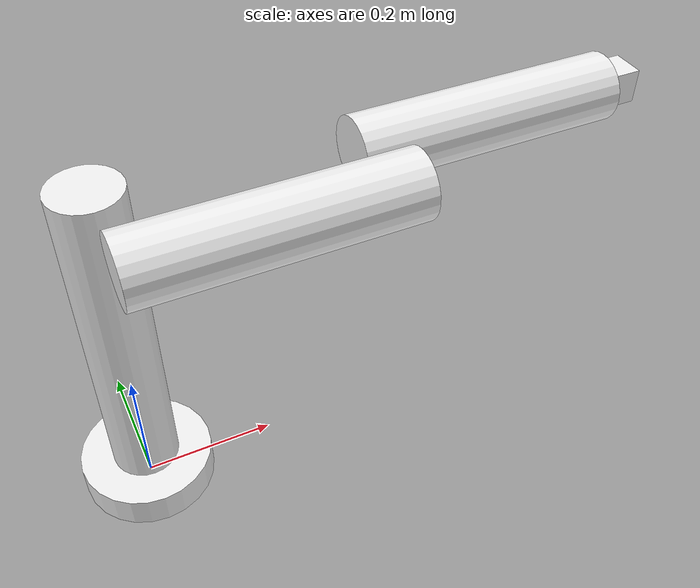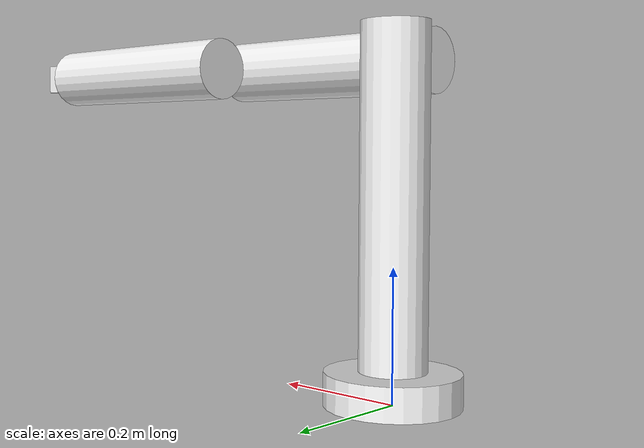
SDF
<sdf version='1.11'>
  <model name='pinchy'>
    <joint name='world_to_base_link' type='fixed'>
      <pose relative_to='__model__'>0 0 0 0 0 0</pose>
      <parent>world</parent>
      <child>base_link</child>
    </joint>
    <link name='base_link'>
      <pose relative_to='world_to_base_link'>0 0 0 0 0 0</pose>
      <inertial>
        <pose>0 0 0.025000000000000001 0 0 0</pose>
        <mass>1</mass>
        <inertia>
          <ixx>0.0027000000000000001</ixx>
          <ixy>0</ixy>
          <ixz>0</ixz>
          <iyy>0.0027000000000000001</iyy>
          <iyz>0</iyz>
          <izz>0.0050000000000000001</izz>
        </inertia>
      </inertial>
      <collision name='base_link_collision'>
        <pose>0 0 0.025000000000000001 0 0 0</pose>
        <geometry>
          <cylinder>
            <length>0.050000000000000003</length>
            <radius>0.10000000000000001</radius>
          </cylinder>
        </geometry>
      </collision>
      <visual name='base_link_visual'>
        <pose>0 0 0.025000000000000001 0 0 0</pose>
        <geometry>
          <cylinder>
            <length>0.050000000000000003</length>
            <radius>0.10000000000000001</radius>
          </cylinder>
        </geometry>
        <material>
          <diffuse>0.9375 0.9375 0.9375 1</diffuse>
          <ambient>0.9375 0.9375 0.9375 1</ambient>
        </material>
      </visual>
    </link>
    <joint name='base_link_to_torso' type='revolute'>
      <pose relative_to='base_link'>0 0 0.050000000000000003 0 0 0</pose>
      <parent>base_link</parent>
      <child>torso</child>
      <axis>
        <xyz>0 0 1</xyz>
        <limit>
          <lower>-inf</lower>
          <upper>inf</upper>
        </limit>
        <dynamics>
          <spring_reference>0</spring_reference>
          <spring_stiffness>0</spring_stiffness>
        </dynamics>
      </axis>
    </joint>
    <link name='torso'>
      <pose relative_to='base_link_to_torso'>0 0 0 0 0 0</pose>
      <inertial>
        <pose>0 0 0.25 0 0 0</pose>
        <mass>1</mass>
        <inertia>
          <ixx>0.0021459999999999999</ixx>
          <ixy>0</ixy>
          <ixz>0</ixz>
          <iyy>0.0021459999999999999</iyy>
          <iyz>0</iyz>
          <izz>0.00125</izz>
        </inertia>
      </inertial>
      <collision name='torso_collision'>
        <pose>0 0 0.25 0 0 0</pose>
        <geometry>
          <cylinder>
            <length>0.5</length>
            <radius>0.050000000000000003</radius>
          </cylinder>
        </geometry>
      </collision>
      <visual name='torso_visual'>
        <pose>0 0 0.25 0 0 0</pose>
        <geometry>
          <cylinder>
            <length>0.5</length>
            <radius>0.050000000000000003</radius>
          </cylinder>
        </geometry>
        <material>
          <diffuse>0.9375 0.9375 0.9375 1</diffuse>
          <ambient>0.9375 0.9375 0.9375 1</ambient>
        </material>
      </visual>
    </link>
    <joint name='torso_to_upper_arm' type='revolute'>
      <pose relative_to='torso'>0 -0.10000000000000001 0.45000000000000001 3.1415926535897931 1.5707926536359933 3.1415926535897931</pose>
      <parent>torso</parent>
      <child>upper_arm</child>
      <axis>
        <xyz>0 1 0</xyz>
        <limit>
          <lower>-inf</lower>
          <upper>inf</upper>
        </limit>
        <dynamics>
          <spring_reference>0</spring_reference>
          <spring_stiffness>0</spring_stiffness>
        </dynamics>
      </axis>
    </joint>
    <link name='upper_arm'>
      <pose relative_to='torso_to_upper_arm'>0 0 0 0 0 0</pose>
      <inertial>
        <pose>0 0 0.20000000000000001 0 0 0</pose>
        <mass>1</mass>
        <inertia>
          <ixx>0.01396</ixx>
          <ixy>0</ixy>
          <ixz>0</ixz>
          <iyy>0.01396</iyy>
          <iyz>0</iyz>
          <izz>0.00125</izz>
        </inertia>
      </inertial>
      <collision name='upper_arm_collision'>
        <pose>0 0 0.20000000000000001 0 0 0</pose>
        <geometry>
          <cylinder>
            <length>0.40000000000000002</length>
            <radius>0.050000000000000003</radius>
          </cylinder>
        </geometry>
      </collision>
      <visual name='upper_arm_visual'>
        <pose>0 0 0.20000000000000001 0 0 0</pose>
        <geometry>
          <cylinder>
            <length>0.40000000000000002</length>
            <radius>0.050000000000000003</radius>
          </cylinder>
        </geometry>
        <material>
          <diffuse>0.9375 0.9375 0.9375 1</diffuse>
          <ambient>0.9375 0.9375 0.9375 1</ambient>
        </material>
      </visual>
    </link>
    <joint name='upper_arm_to_lower_arm' type='revolute'>
      <pose relative_to='upper_arm'>0 0.10000000000000001 0.34999999999999998 0 0 0</pose>
      <parent>upper_arm</parent>
      <child>lower_arm</child>
      <axis>
        <xyz>0 1 0</xyz>
        <limit>
          <lower>-inf</lower>
          <upper>inf</upper>
        </limit>
        <dynamics>
          <spring_reference>0</spring_reference>
          <spring_stiffness>0</spring_stiffness>
        </dynamics>
      </axis>
    </joint>
    <link name='lower_arm'>
      <pose relative_to='upper_arm_to_lower_arm'>0 0 0 0 0 0</pose>
      <inertial>
        <pose>0 0 0.20000000000000001 0 0 0</pose>
        <mass>1</mass>
        <inertia>
          <ixx>0.01396</ixx>
          <ixy>0</ixy>
          <ixz>0</ixz>
          <iyy>0.01396</iyy>
          <iyz>0</iyz>
          <izz>0.00125</izz>
        </inertia>
      </inertial>
      <collision name='lower_arm_collision'>
        <pose>0 0 0.20000000000000001 0 0 0</pose>
        <geometry>
          <cylinder>
            <length>0.40000000000000002</length>
            <radius>0.050000000000000003</radius>
          </cylinder>
        </geometry>
      </collision>
      <visual name='lower_arm_visual'>
        <pose>0 0 0.20000000000000001 0 0 0</pose>
        <geometry>
          <cylinder>
            <length>0.40000000000000002</length>
            <radius>0.050000000000000003</radius>
          </cylinder>
        </geometry>
        <material>
          <diffuse>0.9375 0.9375 0.9375 1</diffuse>
          <ambient>0.9375 0.9375 0.9375 1</ambient>
        </material>
      </visual>
    </link>
    <joint name='lower_arm_to_hand' type='revolute'>
      <pose relative_to='lower_arm'>0 0 0.42499999999999999 0 0 0</pose>
      <parent>lower_arm</parent>
      <child>hand</child>
      <axis>
        <xyz>0 1 0</xyz>
        <limit>
          <lower>-inf</lower>
          <upper>inf</upper>
        </limit>
        <dynamics>
          <spring_reference>0</spring_reference>
          <spring_stiffness>0</spring_stiffness>
        </dynamics>
      </axis>
    </joint>
    <link name='hand'>
      <pose relative_to='lower_arm_to_hand'>0 0 0 0 0 0</pose>
      <inertial>
        <pose>0 0 0 0 0 0</pose>
        <mass>1</mass>
        <inertia>
          <ixx>0.00042000000000000002</ixx>
          <ixy>0</ixy>
          <ixz>0</ixz>
          <iyy>0.00042000000000000002</iyy>
          <iyz>0</iyz>
          <izz>0.00042000000000000002</izz>
        </inertia>
      </inertial>
      <collision name='hand_collision'>
        <pose>0 0 0 0 0 0</pose>
        <geometry>
          <box>
            <size>0.050000000000000003 0.050000000000000003 0.050000000000000003</size>
          </box>
        </geometry>
      </collision>
      <visual name='hand_visual'>
        <pose>0 0 0 0 0 0</pose>
        <geometry>
          <box>
            <size>0.050000000000000003 0.050000000000000003 0.050000000000000003</size>
          </box>
        </geometry>
        <material>
          <diffuse>0.9375 0.9375 0.9375 1</diffuse>
          <ambient>0.9375 0.9375 0.9375 1</ambient>
        </material>
      </visual>
    </link>
  </model>
</sdf>
